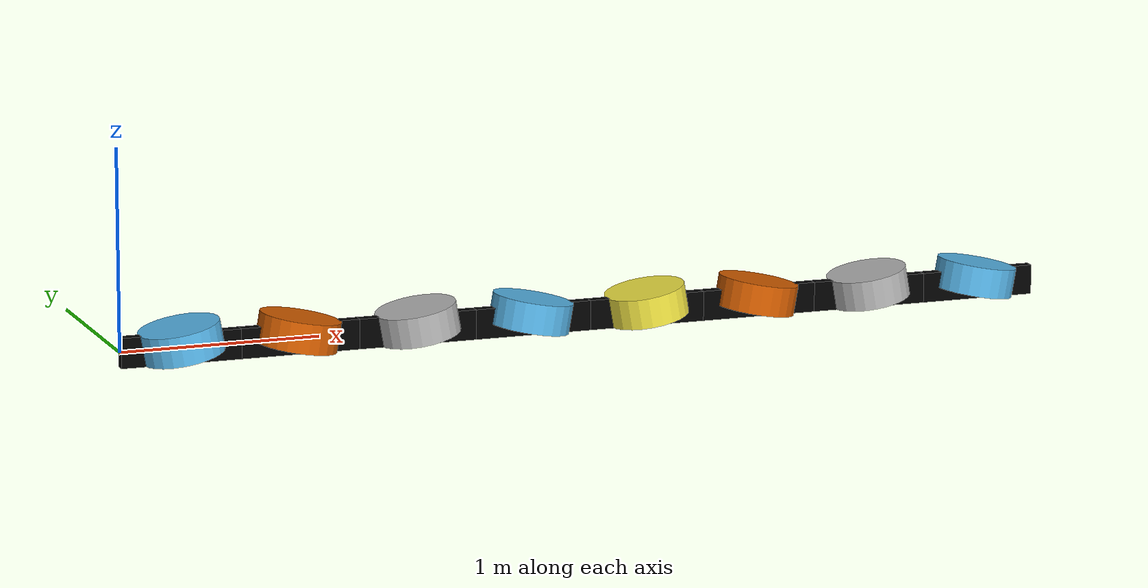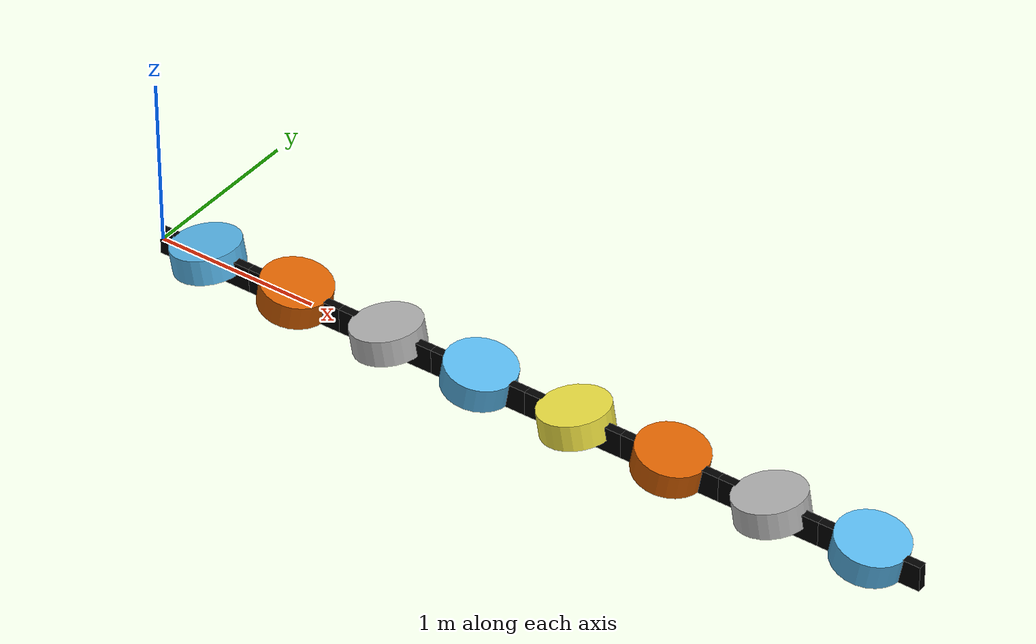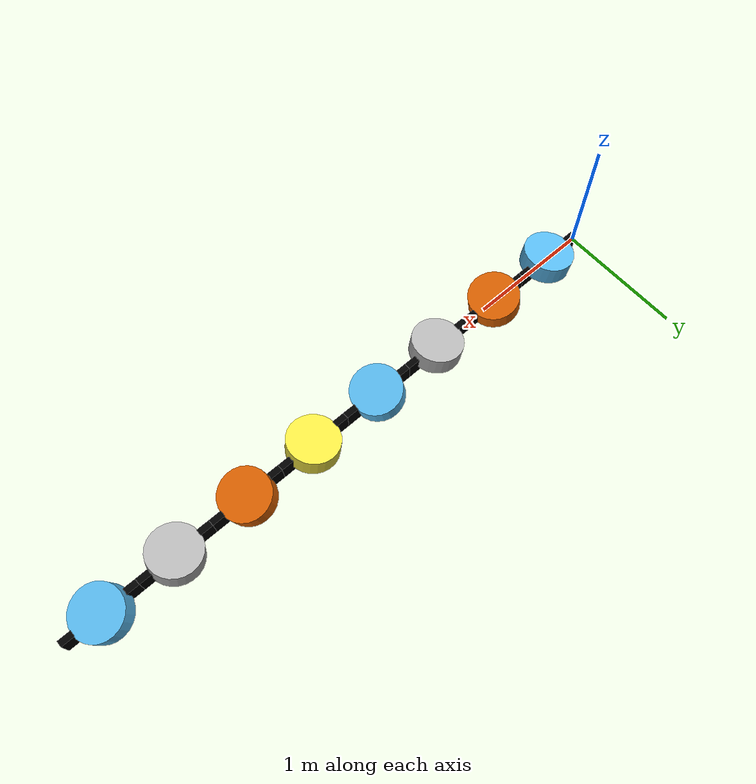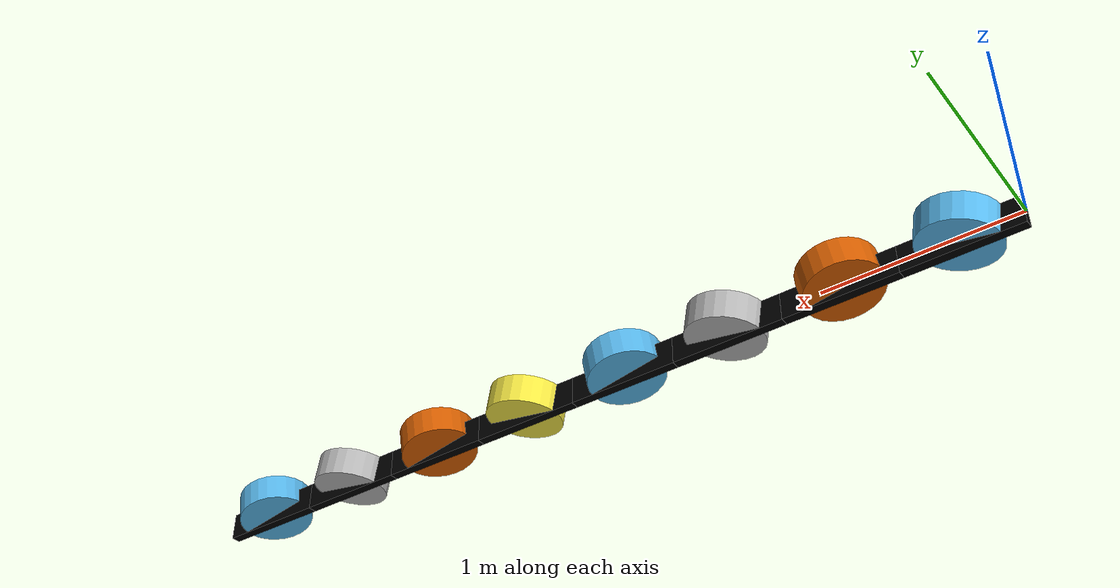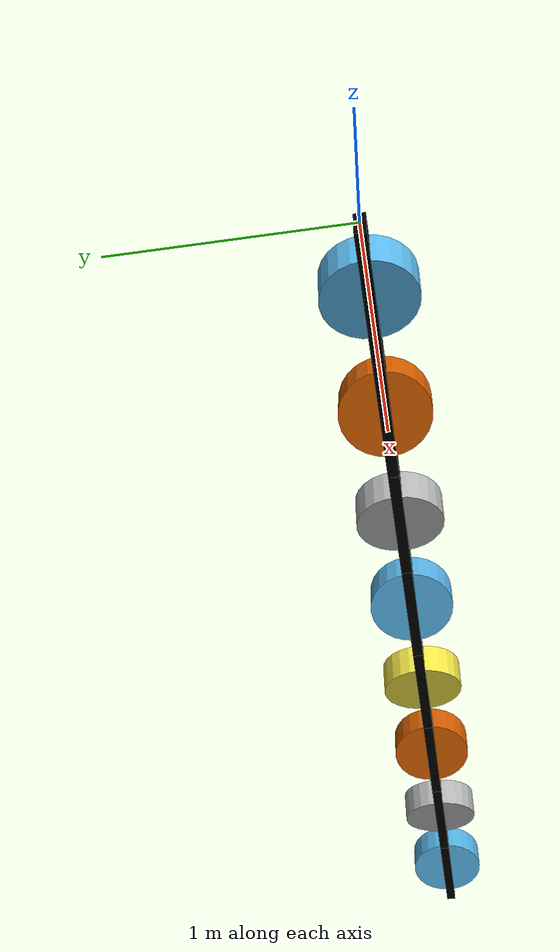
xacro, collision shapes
<?xml version="1.0"?>
<robot
    xmlns:xacro="http://www.ros.org/wiki/xacro" name="hydrus_xi" >

  <xacro:include filename="$(find hydrus_xi)/urdf/hydrus_xi_common.xacro" />
  <xacro:include filename="$(find hydrus_xi)/urdf/hydrus_xi_link.urdf.xacro" />

  <!--  model type 1: baselink (attached with imu, pc): fixed_n-->
  <!--  model type 2: fixed_n_link -->
  <!--  model type 3: fixed_p_link -->
  <xacro:hydrus_xi_module self="1" child="2" rotor_direction="-1"  link_type="1" />
  <xacro:hydrus_xi_module self="2" child="3" rotor_direction="1"  link_type="3" />
  <xacro:hydrus_xi_module self="3" child="4" rotor_direction="-1"  link_type="2" />
  <xacro:hydrus_xi_module self="4" child="5" rotor_direction="1"  link_type="3" />
  <xacro:hydrus_xi_module self="5" child="6" rotor_direction="-1"  link_type="2" />
  <xacro:hydrus_xi_module self="6" child="7" rotor_direction="1"  link_type="3" />
  <xacro:hydrus_xi_module self="7" child="8" rotor_direction="-1"  link_type="2" />
  <xacro:hydrus_xi_module self="8" child="8" rotor_direction="1"  link_type="3" />
</robot>

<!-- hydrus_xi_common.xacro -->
<robot
    xmlns:xacro="http://www.ros.org/wiki/xacro" name="hydrus_xi_common" >

  <!--  model type 1: baselink (attached with imu, pc): fixed_n-->
  <!--  model type 2: fixed_p_link -->
  <!--  model type 3: fixed_n_link -->

  <!-- kinematics [m] -->
  <xacro:property name="link_length" value=".6" />
  <xacro:property name="protector_radius" value=".1925" />
  <xacro:property name="fc_x_offset" value=".566" />
  <xacro:property name="fc_z_offset" value="-0.021" />
  <xacro:property name="thrust_z_offset" value="0.0642" />
  <xacro:property name="thrust_tilt_angle" value="0.17453292519" />
  <xacro:property name="rotor_radius" value=".02" />

  <!-- mass [Kg] -->
  <xacro:property name="rotor_mass" value=".05" /> <!-- exclude from center mass -->

  <!-- material color for rviz -->
  <material name="black">
    <color rgba="0 0 0 1"/>
  </material>

  <material name="red">
    <color rgba="1 0 0 1"/>
  </material>

  <!-- dynamics -->
  <xacro:property name="max_force" value="18.5" />

  <xacro:macro name="link_model" params="type">
    <collision>
      <origin rpy="0 0 0" xyz="${link_length* 0.5} 0 0"/>
      <geometry>
        <box size="${link_length} 0.05 0.15"/>
      </geometry>
    </collision>

    <visual>
      <origin rpy="0 0 0" xyz="${link_length* 0.5} 0 0"/>
      <geometry>
        <mesh filename="package://hydrus_xi/urdf/mesh/${type}.stl" scale="0.001 0.001 0.001"/>
      </geometry>
      <material name="black"/>
    </visual>
  </xacro:macro>

  <!-- friction -->
  <xacro:macro name="friction" params="self">
    <gazebo reference="link${self}">
      <mu1>0.0001</mu1>
      <mu2>0.0001</mu2>
      <material>Gazebo/Black</material>
    </gazebo>
  </xacro:macro>

  <xacro:macro name="damping_factor" params="link">
    <gazebo reference="${link}">
      <dampingFactor>0.00</dampingFactor>
    </gazebo>
  </xacro:macro>
</robot>

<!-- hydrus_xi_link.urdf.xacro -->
<robot
    xmlns:xacro="http://www.ros.org/wiki/xacro" name="hydrus_xi_link" >

  <!-- D-H kai description(different from prof.nakamura) -->
  <xacro:macro name="hydrus_xi_module" params="self child rotor_direction link_type">

    <!-- link -->
    <link name="link${self}">
      <!-- baselink -->
      <xacro:if value="${link_type == 1}">
        <inertial>
          <origin xyz="${link_length* 0.5 + 2.39 * 0.001} 0 ${0.06 * 0.001}" rpy="0 0 0"/>
          <mass value="${.90875 - rotor_mass}" />
          <inertia
              ixx="0.00273" iyy="0.02744" izz="0.02733"
              ixy="0.00019" ixz="-0.00214" iyz="0.0"/>
        </inertial>
        <xacro:link_model type="baselink" />

        <link name="fc">
          <inertial>
            <origin xyz="0 0 0" rpy="0 0 0"/>
            <mass value="0.00001"/>
            <inertia
                ixx="0.000001" ixy="0.0" ixz="0.0"
                iyy="0.000001" iyz="0.0"
                izz="0.000002"/>
          </inertial>
        </link>
        <joint name="fc_joint" type="fixed">
          <child link="fc"/>
          <parent link="link${self}"/>
          <origin rpy="0 0 0" xyz="${fc_x_offset} 0 ${fc_z_offset}"/>
          <axis xyz="0 0 1"/>
        </joint>

      </xacro:if>

      <!-- fixed_n_link -->
      <xacro:if value="${link_type == 2}">
        <inertial>
          <origin xyz="${link_length * 0.5 + (-7.33) * 0.001} 0 ${0.79 * 0.001}" rpy="0 0 0"/>
          <mass value="${0.87477 - rotor_mass}" />
          <inertia
              ixx="0.00289" iyy="0.02535" izz="0.02542"
              ixy="0.00006" ixz="0.00198" iyz="0.0"/>
        </inertial>
        <xacro:link_model type="fixed_tilt_n_link" />
      </xacro:if>

      <!-- fixed_p_link -->
      <xacro:if value="${link_type == 3}">
        <inertial>
          <origin xyz="${link_length * 0.5 + (-8.53) * 0.001} 0 ${0.8 * 0.001}" rpy="0 0 0"/>
          <mass value="${0.87512 - rotor_mass}" />
          <inertia
              ixx="0.00289" iyy="0.02534" izz="0.02541"
              ixy="0.00006" ixz="-0.00202" iyz="0.0"/>
        </inertial>
        <xacro:link_model type="fixed_tilt_p_link" />
      </xacro:if>
    </link>
    <xacro:damping_factor link ="link${self}"/>

    <!-- rotor -->
    <joint name="rotor${self}" type="continuous">
      <limit effort="100.0" lower="0" upper="${max_force}" velocity="0.5"/> <!-- force range -->
      <parent link="link${self}"/>
      <child link="thrust${self}"/>
      <xacro:if value="${link_type == 1}" >
        <origin rpy="0 ${-thrust_tilt_angle} 0" xyz="${link_length* 0.5} 0 ${thrust_z_offset}"/>
      </xacro:if>
      <xacro:if value="${link_type == 2}" >
        <origin rpy="0 ${-thrust_tilt_angle} 0" xyz="${link_length* 0.5} 0 ${thrust_z_offset}"/>
      </xacro:if>
      <xacro:if value="${link_type == 3}" >
        <origin rpy="0 ${thrust_tilt_angle} 0" xyz="${link_length* 0.5} 0 ${thrust_z_offset}"/>
      </xacro:if>
      <axis xyz="0 0 ${rotor_direction}"/>
    </joint>

    <link name="thrust${self}">
      <!-- visual & collisiont -->
      <inertial>
        <origin xyz="0 0 0" rpy="0 0 0"/>
        <mass value="${rotor_mass}"/>
        <inertia
            ixx="${rotor_mass * .25 * rotor_radius * rotor_radius}" ixy="0.0" ixz="0.0"
            iyy="${rotor_mass * .25 * rotor_radius * rotor_radius}" iyz="0.0"
            izz="${rotor_mass * .5 * rotor_radius * rotor_radius}"/>
      </inertial>

      <collision>
        <origin rpy="0 0 0" xyz="0 0 -0.03"/>
        <geometry>
          <cylinder length="0.15" radius="${protector_radius + 0.01}"/>
        </geometry>
        </collision>

    </link>
    <xacro:damping_factor link ="thrust${self}"/>

    <xacro:if value="${self == 1}">
      <!-- dummy root link for KDL -->
      <link name="root">
        <inertial>
          <origin xyz="0 0 0" rpy="0 0 0"/>
          <mass value="0.00001"/>
          <inertia
              ixx="0.000001" ixy="0.0" ixz="0.0"
              iyy="0.000001" iyz="0.0"
              izz="0.000002"/>
        </inertial>
      </link>
      <joint name="root_joint" type="fixed">
        <parent link="root"/>
        <child link="link${self}"/>
        <origin rpy="0 0 0" xyz="0 0 0"/>
        <axis xyz="0 0 1"/>
      </joint>
    </xacro:if>

    <!-- joint -->>
    <xacro:unless value="${self == child}">
      <joint name="joint${self}" type="revolute">
        <limit effort="3.1" lower="-1.57" upper="1.57" velocity="0.5"/>
        <parent link="link${self}"/>
        <child link="link${child}"/>
        <origin rpy="0 0 0" xyz="${link_length} 0 0"/>
        <axis xyz="0 0 1"/>
        <dynamics damping="0.8" friction="0.05"/>
      </joint>
    </xacro:unless>

    <!-- fc -->
    <xacro:if value="${link_type == 1}">
      <link name="fc">
        <inertial>
          <origin xyz="0 0 0" rpy="0 0 0"/>
          <mass value="0.00001"/>
          <inertia
              ixx="0.000001" ixy="0.0" ixz="0.0"
              iyy="0.000001" iyz="0.0"
              izz="0.000002"/>
        </inertial>
      </link>
      <joint name="fc_joint" type="fixed">
        <child link="fc"/>
        <parent link="link${self}"/>
        <origin rpy="0 0 0" xyz="${fc_x_offset} 0 ${fc_z_offset}"/>
        <axis xyz="0 0 1"/>
      </joint>
    </xacro:if>

    <!-- hardware interface -->
    <xacro:unless value="${self == child}">
      <transmission name="joint_tran${self}">
        <type>transmission_interface/SimpleTransmission</type>
        <joint name="joint${self}">
          <!-- TODO: effort is torque, maybe position is enough -->
          <hardwareInterface>hardware_interface/EffortJointInterface</hardwareInterface>
        </joint>
        <actuator name="servo{self}">
          <!-- TODO: effort is torque, maybe position is enough -->
          <hardwareInterface>hardware_interface/EffortJointInterface</hardwareInterface>
          <mechanicalReduction>1</mechanicalReduction>
        </actuator>
      </transmission>
    </xacro:unless>

    <transmission name="rotor_tran${self}">
      <type>transmission_interface/SimpleTransmission</type>
      <joint name="rotor${self}">
        <!-- TODO: effort is torque, maybe position is enough -->
        <hardwareInterface>RotorInterface</hardwareInterface>
      </joint>
      <actuator name="rotor${self}">
        <!-- TODO: effort is torque, maybe position is enough -->
        <hardwareInterface>RotorInterface</hardwareInterface>
        <mechanicalReduction>1</mechanicalReduction>
      </actuator>
    </transmission>

    <xacro:friction self ="${self}"/>

  </xacro:macro>

</robot>
